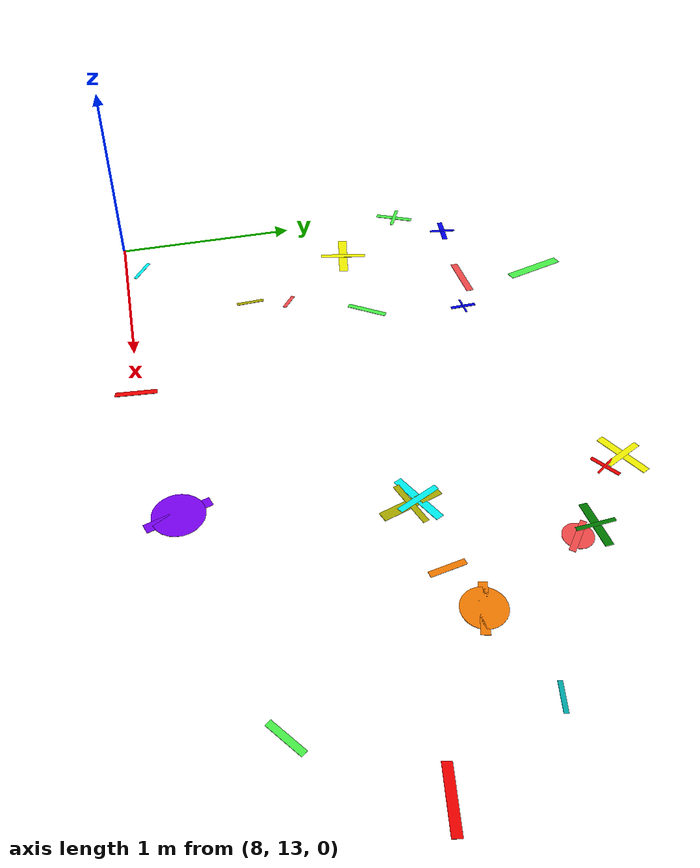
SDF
<sdf version="1.6">
 <world name="default">
  <model name="letter_M_1764">
   <static>true</static>
   <pose>8.26 13.09 0.013 0 0 5.716</pose>
   <link name="link">
    <visual name="visual">
     <geometry><box><size>0.16 0.02 0.002</size></box></geometry>
     <material>
      <ambient>0.0 1.0 1.0 1</ambient>
      <diffuse>0.0 1.0 1.0 1</diffuse>
      <specular>0.1 0.1 0.1 1</specular>
     </material>
    </visual>
   </link>
  </model>
  <model name="letter_H_1765">
   <static>true</static>
   <pose>8.37 14.27 0.007 0 0 2.939</pose>
   <link name="link">
    <visual name="visual">
     <geometry><box><size>0.32 0.05 0.002</size></box></geometry>
     <material>
      <ambient>1.0 1.0 0.0 1</ambient>
      <diffuse>1.0 1.0 0.0 1</diffuse>
      <specular>0.1 0.1 0.1 1</specular>
     </material>
    </visual>
    <visual name="visual2">
     <pose>0 0 0.001 0 0 1.57</pose>
     <geometry><box><size>0.26 0.03 0.001</size></box></geometry>
     <material><ambient>1.0 1.0 0.0 1</ambient><diffuse>1.0 1.0 0.0 1</diffuse></material>
    </visual>
   </link>
  </model>
  <model name="letter_F_1767">
   <static>true</static>
   <pose>8.03 14.68 0.011 0 0 4.258</pose>
   <link name="link">
    <visual name="visual">
     <geometry><box><size>0.22 0.03 0.002</size></box></geometry>
     <material>
      <ambient>0.3 1.0 0.3 1</ambient>
      <diffuse>0.3 1.0 0.3 1</diffuse>
      <specular>0.1 0.1 0.1 1</specular>
     </material>
    </visual>
    <visual name="visual2">
     <pose>0 0 0.001 0 0 1.57</pose>
     <geometry><box><size>0.17 0.02 0.001</size></box></geometry>
     <material><ambient>0.3 1.0 0.3 1</ambient><diffuse>0.3 1.0 0.3 1</diffuse></material>
    </visual>
   </link>
  </model>
  <model name="letter_I_1768">
   <static>true</static>
   <pose>8.25 14.93 0.012 0 0 6.158</pose>
   <link name="link">
    <visual name="visual">
     <geometry><box><size>0.19 0.03 0.002</size></box></geometry>
     <material>
      <ambient>0.0 0.0 1.0 1</ambient>
      <diffuse>0.0 0.0 1.0 1</diffuse>
      <specular>0.1 0.1 0.1 1</specular>
     </material>
    </visual>
    <visual name="visual2">
     <pose>0 0 0.001 0 0 1.57</pose>
     <geometry><box><size>0.15 0.02 0.001</size></box></geometry>
     <material><ambient>0.0 0.0 1.0 1</ambient><diffuse>0.0 0.0 1.0 1</diffuse></material>
    </visual>
   </link>
  </model>
  <model name="letter_V_1844">
   <static>true</static>
   <pose>9.32 12.99 0.003 0 0 1.480</pose>
   <link name="link">
    <visual name="visual">
     <geometry><box><size>0.21 0.03 0.002</size></box></geometry>
     <material>
      <ambient>1.0 0.0 0.0 1</ambient>
      <diffuse>1.0 0.0 0.0 1</diffuse>
      <specular>0.1 0.1 0.1 1</specular>
     </material>
    </visual>
   </link>
  </model>
  <model name="letter_X_1846">
   <static>true</static>
   <pose>8.92 14.28 0.004 0 0 4.098</pose>
   <link name="link">
    <visual name="visual">
     <geometry><box><size>0.22 0.03 0.002</size></box></geometry>
     <material>
      <ambient>0.3 1.0 0.3 1</ambient>
      <diffuse>0.3 1.0 0.3 1</diffuse>
      <specular>0.1 0.1 0.1 1</specular>
     </material>
    </visual>
   </link>
  </model>
  <model name="letter_K_1847">
   <static>true</static>
   <pose>8.70 13.66 0.005 0 0 1.622</pose>
   <link name="link">
    <visual name="visual">
     <geometry><box><size>0.15 0.02 0.002</size></box></geometry>
     <material>
      <ambient>0.7 0.7 0.0 1</ambient>
      <diffuse>0.7 0.7 0.0 1</diffuse>
      <specular>0.1 0.1 0.1 1</specular>
     </material>
    </visual>
   </link>
  </model>
  <model name="letter_J_1848">
   <static>true</static>
   <pose>8.75 13.87 0.008 0 0 2.511</pose>
   <link name="link">
    <visual name="visual">
     <geometry><box><size>0.11 0.02 0.002</size></box></geometry>
     <material>
      <ambient>1.0 0.3 0.3 1</ambient>
      <diffuse>1.0 0.3 0.3 1</diffuse>
      <specular>0.1 0.1 0.1 1</specular>
     </material>
    </visual>
   </link>
  </model>
  <model name="letter_V_1849">
   <static>true</static>
   <pose>8.76 15.33 0.012 0 0 1.856</pose>
   <link name="link">
    <visual name="visual">
     <geometry><box><size>0.34 0.05 0.002</size></box></geometry>
     <material>
      <ambient>0.3 1.0 0.3 1</ambient>
      <diffuse>0.3 1.0 0.3 1</diffuse>
      <specular>0.1 0.1 0.1 1</specular>
     </material>
    </visual>
   </link>
  </model>
  <model name="letter_K_1850">
   <static>true</static>
   <pose>8.75 14.89 0.010 0 0 0.028</pose>
   <link name="link">
    <visual name="visual">
     <geometry><box><size>0.27 0.04 0.002</size></box></geometry>
     <material>
      <ambient>1.0 0.3 0.3 1</ambient>
      <diffuse>1.0 0.3 0.3 1</diffuse>
      <specular>0.1 0.1 0.1 1</specular>
     </material>
    </visual>
   </link>
  </model>
  <model name="letter_L_1851">
   <static>true</static>
   <pose>9.01 14.81 0.004 0 0 1.600</pose>
   <link name="link">
    <visual name="visual">
     <geometry><box><size>0.14 0.02 0.002</size></box></geometry>
     <material>
      <ambient>0.0 0.0 1.0 1</ambient>
      <diffuse>0.0 0.0 1.0 1</diffuse>
      <specular>0.1 0.1 0.1 1</specular>
     </material>
    </visual>
    <visual name="visual2">
     <pose>0 0 0.001 0 0 1.57</pose>
     <geometry><box><size>0.12 0.01 0.001</size></box></geometry>
     <material><ambient>0.0 0.0 1.0 1</ambient><diffuse>0.0 0.0 1.0 1</diffuse></material>
    </visual>
   </link>
  </model>
  <model name="letter_Q_1925">
   <static>true</static>
   <pose>10.17 13.12 0.009 0 0 5.020</pose>
   <link name="link">
    <visual name="visual">
     <geometry><box><size>0.31 0.05 0.002</size></box></geometry>
     <material>
      <ambient>0.5 0.0 1.0 1</ambient>
      <diffuse>0.5 0.0 1.0 1</diffuse>
      <specular>0.1 0.1 0.1 1</specular>
     </material>
    </visual>
    <visual name="visual2">
     <geometry><cylinder><radius>0.12</radius><length>0.002</length></cylinder></geometry>
     <material><ambient>0.5 0.0 1.0 1</ambient><diffuse>0.5 0.0 1.0 1</diffuse></material>
    </visual>
   </link>
  </model>
  <model name="letter_T_1927">
   <static>true</static>
   <pose>10.34 14.12 0.007 0 0 1.884</pose>
   <link name="link">
    <visual name="visual">
     <geometry><box><size>0.30 0.05 0.002</size></box></geometry>
     <material>
      <ambient>0.7 0.7 0.0 1</ambient>
      <diffuse>0.7 0.7 0.0 1</diffuse>
      <specular>0.1 0.1 0.1 1</specular>
     </material>
    </visual>
    <visual name="visual2">
     <pose>0 0 0.001 0 0 1.57</pose>
     <geometry><box><size>0.24 0.03 0.001</size></box></geometry>
     <material><ambient>0.7 0.7 0.0 1</ambient><diffuse>0.7 0.7 0.0 1</diffuse></material>
    </visual>
   </link>
  </model>
  <model name="letter_T_1928">
   <static>true</static>
   <pose>10.32 14.16 0.007 0 0 0.454</pose>
   <link name="link">
    <visual name="visual">
     <geometry><box><size>0.28 0.04 0.002</size></box></geometry>
     <material>
      <ambient>0.0 1.0 1.0 1</ambient>
      <diffuse>0.0 1.0 1.0 1</diffuse>
      <specular>0.1 0.1 0.1 1</specular>
     </material>
    </visual>
    <visual name="visual2">
     <pose>0 0 0.001 0 0 1.57</pose>
     <geometry><box><size>0.22 0.03 0.001</size></box></geometry>
     <material><ambient>0.0 1.0 1.0 1</ambient><diffuse>0.0 1.0 1.0 1</diffuse></material>
    </visual>
   </link>
  </model>
  <model name="letter_A_1929">
   <static>true</static>
   <pose>10.33 15.05 0.007 0 0 3.729</pose>
   <link name="link">
    <visual name="visual">
     <geometry><box><size>0.15 0.02 0.002</size></box></geometry>
     <material>
      <ambient>1.0 0.0 0.0 1</ambient>
      <diffuse>1.0 0.0 0.0 1</diffuse>
      <specular>0.1 0.1 0.1 1</specular>
     </material>
    </visual>
    <visual name="visual2">
     <pose>0 0 0.001 0 0 1.57</pose>
     <geometry><box><size>0.12 0.01 0.001</size></box></geometry>
     <material><ambient>1.0 0.0 0.0 1</ambient><diffuse>1.0 0.0 0.0 1</diffuse></material>
    </visual>
   </link>
  </model>
  <model name="letter_F_1930">
   <static>true</static>
   <pose>10.28 15.16 0.007 0 0 0.461</pose>
   <link name="link">
    <visual name="visual">
     <geometry><box><size>0.27 0.04 0.002</size></box></geometry>
     <material>
      <ambient>1.0 1.0 0.0 1</ambient>
      <diffuse>1.0 1.0 0.0 1</diffuse>
      <specular>0.1 0.1 0.1 1</specular>
     </material>
    </visual>
    <visual name="visual2">
     <pose>0 0 0.001 0 0 1.57</pose>
     <geometry><box><size>0.21 0.03 0.001</size></box></geometry>
     <material><ambient>1.0 1.0 0.0 1</ambient><diffuse>1.0 1.0 0.0 1</diffuse></material>
    </visual>
   </link>
  </model>
  <model name="letter_Z_1999">
   <static>true</static>
   <pose>11.28 13.39 0.008 0 0 3.773</pose>
   <link name="link">
    <visual name="visual">
     <geometry><box><size>0.18 0.03 0.002</size></box></geometry>
     <material>
      <ambient>0.3 1.0 0.3 1</ambient>
      <diffuse>0.3 1.0 0.3 1</diffuse>
      <specular>0.1 0.1 0.1 1</specular>
     </material>
    </visual>
   </link>
  </model>
  <model name="letter_N_2001">
   <static>true</static>
   <pose>11.36 14.40 0.010 0 0 6.057</pose>
   <link name="link">
    <visual name="visual">
     <geometry><box><size>0.13 0.02 0.002</size></box></geometry>
     <material>
      <ambient>0.0 0.7 0.7 1</ambient>
      <diffuse>0.0 0.7 0.7 1</diffuse>
      <specular>0.1 0.1 0.1 1</specular>
     </material>
    </visual>
   </link>
  </model>
  <model name="letter_V_2002">
   <static>true</static>
   <pose>10.71 14.17 0.007 0 0 4.894</pose>
   <link name="link">
    <visual name="visual">
     <geometry><box><size>0.17 0.03 0.002</size></box></geometry>
     <material>
      <ambient>1.0 0.5 0.0 1</ambient>
      <diffuse>1.0 0.5 0.0 1</diffuse>
      <specular>0.1 0.1 0.1 1</specular>
     </material>
    </visual>
   </link>
  </model>
  <model name="letter_O_2003">
   <static>true</static>
   <pose>10.93 14.25 0.010 0 0 5.994</pose>
   <link name="link">
    <visual name="visual">
     <geometry><box><size>0.25 0.04 0.002</size></box></geometry>
     <material>
      <ambient>1.0 0.5 0.0 1</ambient>
      <diffuse>1.0 0.5 0.0 1</diffuse>
      <specular>0.1 0.1 0.1 1</specular>
     </material>
    </visual>
    <visual name="visual2">
     <geometry><cylinder><radius>0.10</radius><length>0.002</length></cylinder></geometry>
     <material><ambient>1.0 0.5 0.0 1</ambient><diffuse>1.0 0.5 0.0 1</diffuse></material>
    </visual>
   </link>
  </model>
  <model name="letter_G_2004">
   <static>true</static>
   <pose>10.68 14.76 0.010 0 0 5.599</pose>
   <link name="link">
    <visual name="visual">
     <geometry><box><size>0.18 0.03 0.002</size></box></geometry>
     <material>
      <ambient>1.0 0.3 0.3 1</ambient>
      <diffuse>1.0 0.3 0.3 1</diffuse>
      <specular>0.1 0.1 0.1 1</specular>
     </material>
    </visual>
    <visual name="visual2">
     <geometry><cylinder><radius>0.07</radius><length>0.002</length></cylinder></geometry>
     <material><ambient>1.0 0.3 0.3 1</ambient><diffuse>1.0 0.3 0.3 1</diffuse></material>
    </visual>
   </link>
  </model>
  <model name="letter_F_2005">
   <static>true</static>
   <pose>10.64 14.86 0.011 0 0 3.208</pose>
   <link name="link">
    <visual name="visual">
     <geometry><box><size>0.24 0.04 0.002</size></box></geometry>
     <material>
      <ambient>0.0 0.5 0.0 1</ambient>
      <diffuse>0.0 0.5 0.0 1</diffuse>
      <specular>0.1 0.1 0.1 1</specular>
     </material>
    </visual>
    <visual name="visual2">
     <pose>0 0 0.001 0 0 1.57</pose>
     <geometry><box><size>0.19 0.02 0.001</size></box></geometry>
     <material><ambient>0.0 0.5 0.0 1</ambient><diffuse>0.0 0.5 0.0 1</diffuse></material>
    </visual>
   </link>
  </model>
  <model name="letter_D_2078">
   <static>true</static>
   <pose>11.62 13.89 0.011 0 0 2.962</pose>
   <link name="link">
    <visual name="visual">
     <geometry><box><size>0.26 0.04 0.002</size></box></geometry>
     <material>
      <ambient>1.0 0.0 0.0 1</ambient>
      <diffuse>1.0 0.0 0.0 1</diffuse>
      <specular>0.1 0.1 0.1 1</specular>
     </material>
    </visual>
   </link>
  </model>
 </world>
</sdf>
